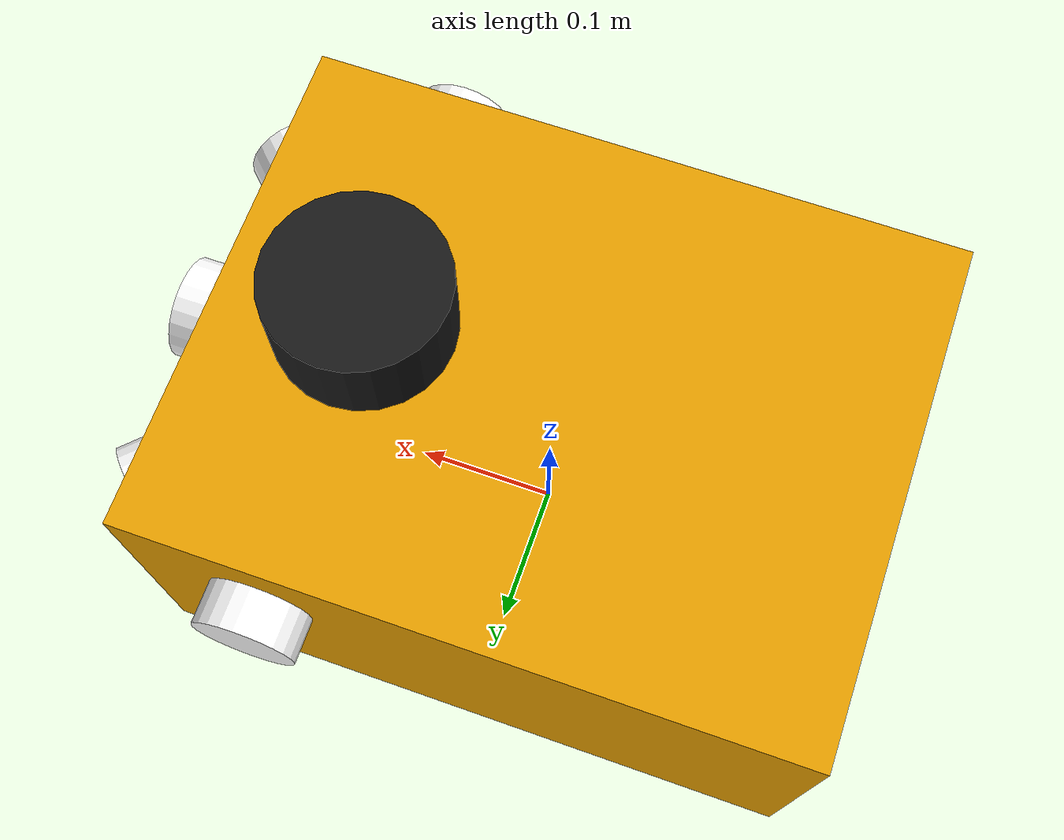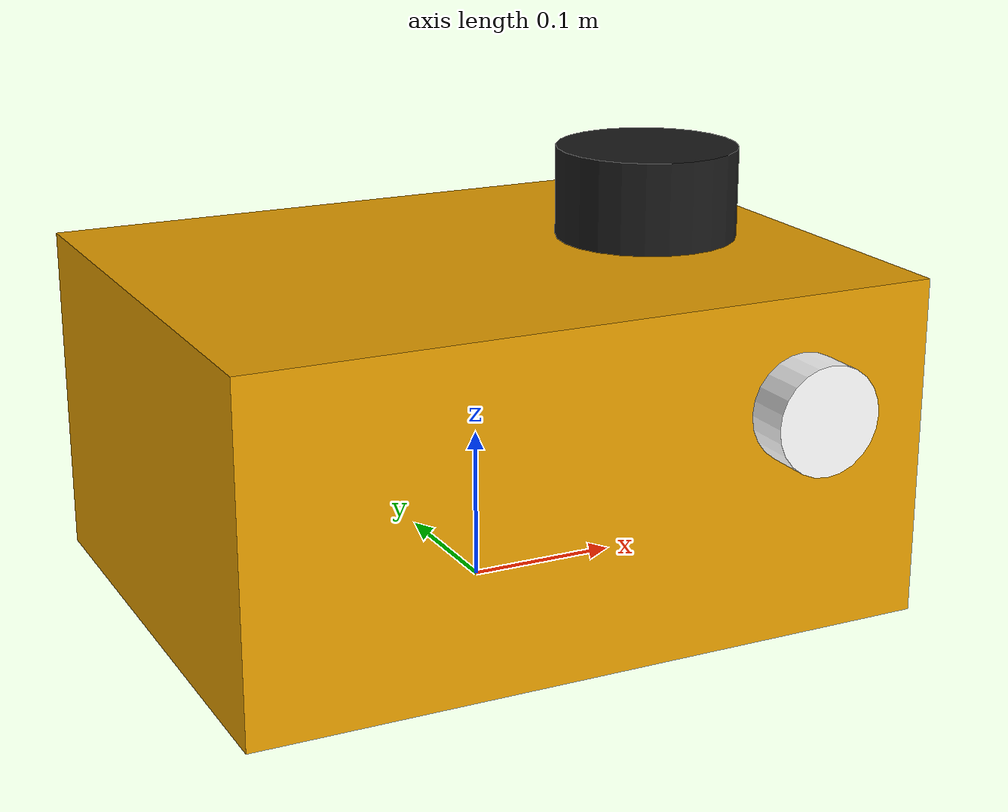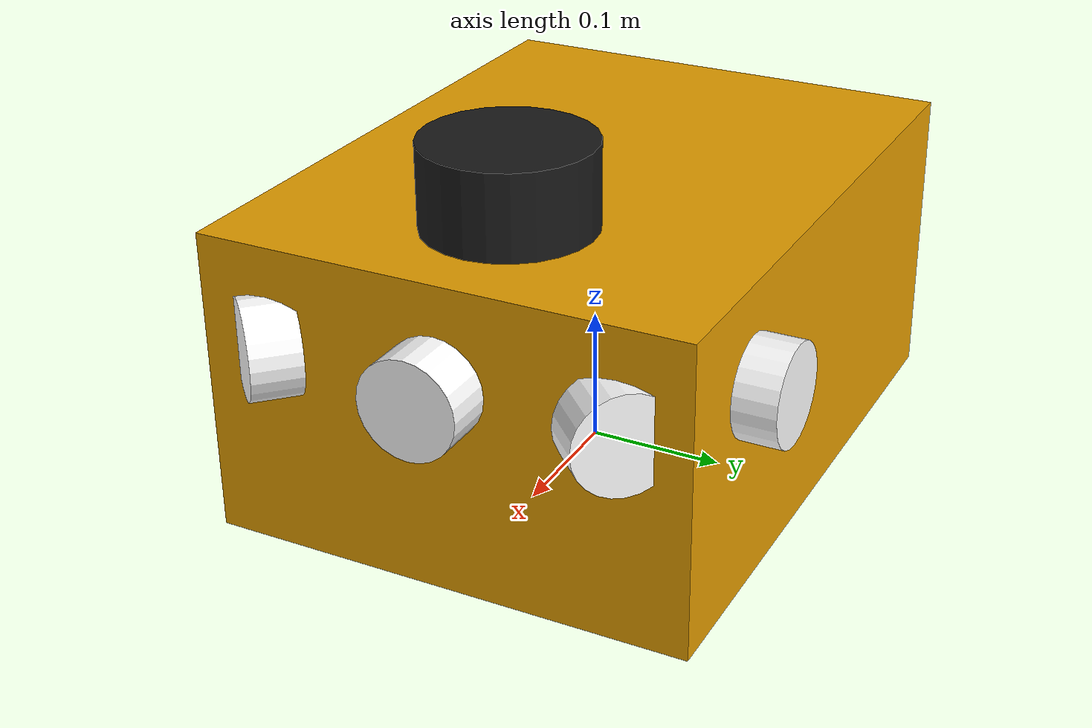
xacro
<?xml version="1.0"?>
<robot name="IMRrobot" xmlns:xacro="http://ros.org/wiki/xacro">

   <material name="white">
      <color rgba="1 1 1 1"/>
    </material>

    <material name="black">
      <color rgba="0.1 0.1 0.1 1"/>
    </material>

  <link name="base_link">
    <visual>
      <geometry>
        <box size="0.45 0.35 0.22"/>
      </geometry>
      <origin rpy="0 0 0" xyz="0 0 0.11"/>
    </visual>
  </link>

  <!-- LIDAR -->
  <joint name="lidar_link_joint" type="fixed">
    <axis xyz="1 0 0"/>
    <parent link="base_link"/>
    <child link="lidar_link"/>.
    <origin rpy="0 0 0" xyz="0.125 0 0.25"/>
  </joint>

  <link name="lidar_link">
    <visual>
      <geometry>
        <cylinder length="0.06" radius="0.06"/>
      </geometry>
      <origin rpy="0 0 1.57075" xyz="0 0 0"/>
      <material name="black"/>
    </visual>
  </link>

   <!-- SONAR0 -->
  <joint name="sonar0_joint" type="fixed">
    <parent link="base_link"/>
    <child link="sonar0"/>
    <origin rpy="0 0 1.57075" xyz="0.135 0.1875 0.15"/>
  </joint>

  <link name="sonar0">
    <visual>
      <geometry>
         <cylinder length="0.035" radius="0.035"/>
      </geometry>
      <origin rpy="0 1.57075 0" xyz="0 0 0"/>
      <material name="white"/>
    </visual>
  </link>

<!-- SONAR1 -->
  <joint name="sonar1_joint" type="fixed">
    <parent link="base_link"/>
    <child link="sonar1"/>
    <origin rpy="0 0 0.785398" xyz="0.225 0.125 0.15"/>
  </joint>

  <link name="sonar1">
    <visual>
      <geometry>
         <cylinder length="0.035" radius="0.035"/>
      </geometry>
      <origin rpy="0 1.57075 0" xyz="0 0 0"/>
      <material name="white"/>
    </visual>
  </link>

 <!-- SONAR2 -->
  <joint name="sonar2_joint" type="fixed">
    <parent link="base_link"/>
    <child link="sonar2"/>
    <origin rpy="0 0 0" xyz="0.2425 0 0.15"/>
  </joint>

  <link name="sonar2">
    <visual>
      <geometry>
         <cylinder length="0.035" radius="0.035"/>
      </geometry>
      <origin rpy="0 1.57075 0" xyz="0 0 0"/>
      <material name="white"/>
    </visual>
  </link>

 <!-- SONAR3 -->
  <joint name="sonar3_joint" type="fixed">
    <parent link="base_link"/>
    <child link="sonar3"/>
    <origin rpy="0 0 -0.785398" xyz="0.225 -0.125 0.15"/>
  </joint>

  <link name="sonar3">
    <visual>
      <geometry>
         <cylinder length="0.035" radius="0.035"/>
      </geometry>
      <origin rpy="0 1.57075 0" xyz="0 0 0"/>
      <material name="white"/>
    </visual>
  </link>

   <!-- SONAR4 -->
  <joint name="sonar4_joint" type="fixed">
    <parent link="base_link"/>
    <child link="sonar4"/>
    <origin rpy="0 0 -1.57075" xyz="0.135 -0.1875 0.15"/>
  </joint>

  <link name="sonar4">
    <visual>
      <geometry>
         <cylinder length="0.035" radius="0.035"/>
      </geometry>
      <origin rpy="0 1.57075 0" xyz="0 0 0"/>
      <material name="white"/>
    </visual>
  </link>

</robot>
